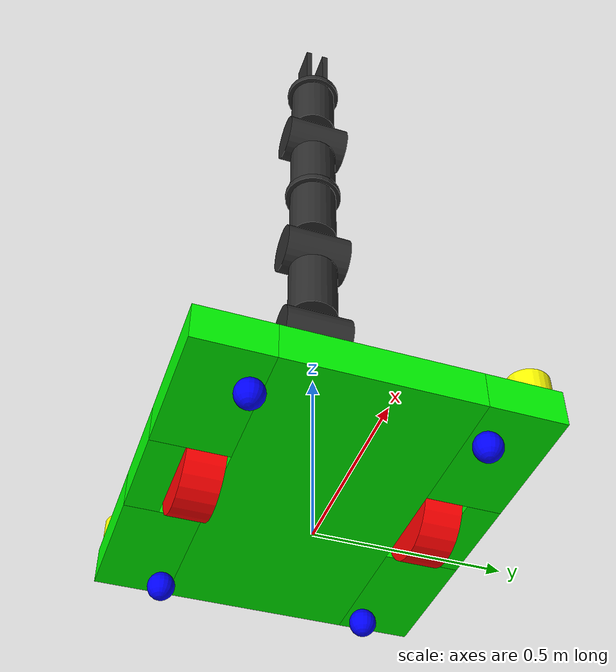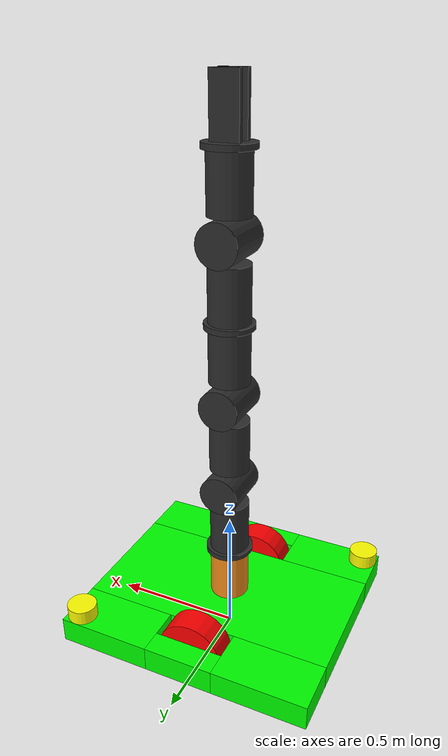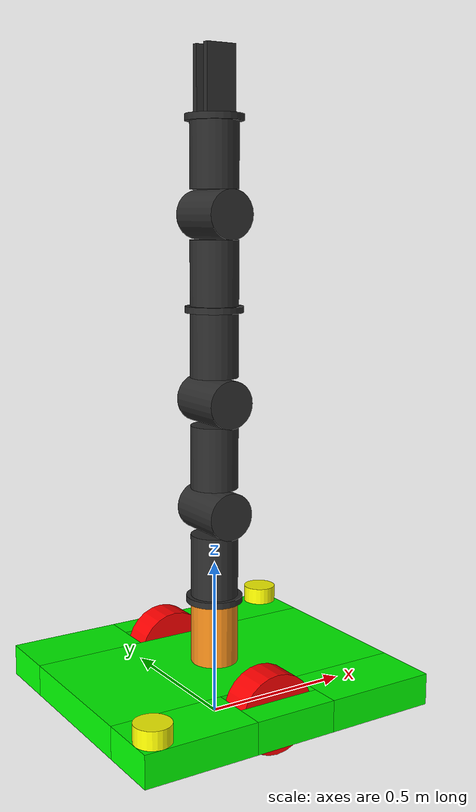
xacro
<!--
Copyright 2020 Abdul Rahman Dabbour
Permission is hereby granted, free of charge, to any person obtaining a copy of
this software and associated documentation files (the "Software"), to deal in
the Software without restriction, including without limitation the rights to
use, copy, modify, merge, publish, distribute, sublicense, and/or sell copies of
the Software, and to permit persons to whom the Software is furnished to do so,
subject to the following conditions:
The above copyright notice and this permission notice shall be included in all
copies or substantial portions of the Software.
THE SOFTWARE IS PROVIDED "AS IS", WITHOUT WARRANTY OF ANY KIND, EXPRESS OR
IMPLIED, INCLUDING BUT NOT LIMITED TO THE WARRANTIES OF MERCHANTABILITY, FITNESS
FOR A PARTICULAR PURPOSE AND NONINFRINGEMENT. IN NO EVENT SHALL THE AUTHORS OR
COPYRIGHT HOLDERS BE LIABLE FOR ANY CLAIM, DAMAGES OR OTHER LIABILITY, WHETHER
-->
<?xml version="1.0" ?>
<robot name="protobot" xmlns:xacro="https://www.ros.org/wiki/xacro">

  <!-- Xacro includes -->
  <xacro:include filename="$(find protobot)/urdf/materials.xacro" />
  <xacro:include filename="$(find protobot)/urdf/macros.xacro" />
  <xacro:include filename="$(find protobot)/urdf/gazebo.xacro" />

  <!-- Mobile base -->
  <!-- Chassis properties -->
  <xacro:property name="chassis_height" value="0.1" />
  <xacro:property name="chassis_length" value="1" />
  <xacro:property name="chassis_width" value="0.5" />
  <xacro:property name="chassis_mass" value="5" />

  <!-- Driven wheels properties -->
  <xacro:property name="dwheel_mass" value="0.5" />
  <xacro:property name="dwheel_width" value="0.1" />
  <xacro:property name="dwheel_radius" value="0.125" />

  <!-- Castor wheel properties -->
  <xacro:property name="cwheel_mass" value="0.5" />
  <xacro:property name="cwheel_radius" value="${((dwheel_radius-(chassis_height/2))/2)*0.99}" />

  <!-- Hokuyo properties -->
  <xacro:property name="laser_mass" value="1e-5" />
  <xacro:property name="laser_side" value="${((dwheel_radius-(chassis_height/2))/2)*1.5}" />
  <xacro:property name="laser_height" value="${laser_side*2}" />

  <xacro:include filename="$(find protobot)/urdf/mobile.xacro" />

  <!-- Mainpulator -->
  <xacro:arg name="manipulator" default="true" />
  <xacro:property name="manipulator" value="$(arg manipulator)" />
  <xacro:if value="${manipulator == 'true' or manipulator}">
    <!-- End effector properties -->
    <xacro:property name="endeffector_mass" value="0.1" />
    <xacro:property name="endeffector_width" value="0.02" />
    <xacro:property name="endeffector_length" value="0.1" />
    <xacro:property name="endeffector_height" value="0.2" />

    <!-- Axel offset properties -->
    <xacro:property name="axel_offset" value="0.005" />

    <!-- Gear 0 properties -->
    <xacro:property name="gear0_mass" value="0.5" />
    <xacro:property name="gear0_radius" value="0.075" />
    <xacro:property name="gear0_height" value="0.2" />

    <!-- Gear 2 properties -->
    <xacro:property name="gear2_mass" value="0.25" />
    <xacro:property name="gear2_radius" value="0.09" />
    <xacro:property name="gear2_height" value="0.02" />

    <!-- Link 1 properties -->
    <xacro:property name="alink1_mass" value="1" />
    <xacro:property name="alink1_radius" value="0.075" />
    <xacro:property name="alink1_height" value="0.2" />

    <!-- Link 2 properties -->
    <xacro:property name="alink2_mass" value="1" />
    <xacro:property name="alink2_radius" value="0.075" />
    <xacro:property name="alink2_height" value="0.2" />

    <!-- Link 3 properties -->
    <xacro:property name="alink3_mass" value="1" />
    <xacro:property name="alink3_radius" value="0.075" />
    <xacro:property name="alink3_height" value="0.2" />

    <!-- Link 4 properties -->
    <xacro:property name="alink4_mass" value="1" />
    <xacro:property name="alink4_radius" value="0.075" />
    <xacro:property name="alink4_height" value="0.2" />

    <!-- Link 5 properties -->
    <xacro:property name="alink5_mass" value="1" />
    <xacro:property name="alink5_radius" value="0.075" />
    <xacro:property name="alink5_height" value="0.2" />

    <!-- Link 6 properties -->
    <xacro:property name="alink6_mass" value="1" />
    <xacro:property name="alink6_radius" value="0.075" />
    <xacro:property name="alink6_height" value="0.2" />

    <xacro:include filename="$(find protobot)/urdf/manipulator.xacro" />
  </xacro:if>
</robot>

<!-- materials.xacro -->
<robot name="materials" xmlns:xacro="https://www.ros.org/wiki/xacro">

    <material name="red">
        <color rgba="1 0 0 1" />
    </material>
    <material name="green">
        <color rgba="0 1 0 1" />
    </material>
    <material name="blue">
        <color rgba="0 0 1 1" />
    </material>
    <material name="yellow">
        <color rgba="1 1 0 1" />
    </material>
    <material name="darkgrey">
        <color rgba="0.175 0.175 0.175 1" />
    </material>

</robot>

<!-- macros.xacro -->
<robot name="macros" xmlns:xacro="https://www.ros.org/wiki/xacro">

  <!-- Macros for calculating inertia matrices -->
  <xacro:macro name="cuboid_inertia" params="h w l m">
    <inertia ixx="${(m/12)*((w*w)+(h*h))}" iyy="${(m/12)*((h*h)+(l*l))}" izz="${(m/12)*((w*w)+(l*l))}" ixy="0" ixz="0" iyz="0" />
  </xacro:macro>

  <xacro:macro name="cylinder_inertia" params="r h m">
    <inertia ixx="${(m/12)*((3*r*r)+(h*h))}" iyy="${(m/12)*((3*r*r)+(h*h))}" izz="${(m/2)*(r*r)}" ixy="0" ixz="0" iyz="0" />
  </xacro:macro>

  <xacro:macro name="sphere_inertia" params="r m">
    <inertia ixx="${2*m*r*r/5}" ixy="0" ixz="0" iyy="${2*m*r*r/5}" iyz="0" izz="${2*m*r*r/5}" />
  </xacro:macro>

  <!-- Driven wheels macro -->
  <xacro:macro name="dwheel" params="prefix reflect">

    <link name="${prefix}_dwheel">
      <inertial>
        <mass value="${dwheel_mass}" />
        <xacro:cylinder_inertia r="${dwheel_radius}" h="${dwheel_width}" m="${dwheel_mass}" />
      </inertial>
      <visual>
        <origin xyz="0 0 0" rpy="${pi/2} 0 0" />
        <geometry>
          <cylinder radius="${dwheel_radius}" length="${dwheel_width}" />
        </geometry>
        <material name="red" />
      </visual>
      <collision>
        <origin xyz="0 0 0" rpy="${pi/2} 0 0" />
        <geometry>
          <cylinder radius="${dwheel_radius}" length="${dwheel_width}" />
        </geometry>
      </collision>
    </link>

    <joint name="${prefix}_dwheel_joint" type="continuous">
      <axis xyz="0 1 0" rpy="0 0 0" />
      <parent link="chassis" />
      <child link="${prefix}_dwheel" />
      <origin xyz="0 ${reflect*((chassis_width/2)+((dwheel_width/2) + 0.005))} 0" rpy="0 0 0" />
    </joint>

    <link name="${prefix}_dwheel_bumper1">
      <inertial>
        <mass value="${dwheel_mass}" />
        <xacro:cuboid_inertia l="${((chassis_length - (dwheel_radius*2))/2)*0.9}" w="${dwheel_width*2}" h="${chassis_height}" m="${laser_mass}" />
      </inertial>
      <visual>
        <origin xyz="0 0 0" rpy="0 0 0" />
        <geometry>
          <box size="${((chassis_length - ((dwheel_radius + 0.01)*2))/2)} ${dwheel_width*2} ${chassis_height}" />
        </geometry>
        <material name="green" />
      </visual>
      <collision>
        <origin xyz="0 0 0" rpy="0 0 0" />
        <geometry>
          <box size="${((chassis_length - ((dwheel_radius + 0.01)*2))/2)} ${dwheel_width*2} ${chassis_height}" />
        </geometry>
      </collision>
    </link>

    <joint name="chassis_to_${prefix}_dwheel_bumper1" type="fixed">
      <parent link="chassis" />
      <child link="${prefix}_dwheel_bumper1" />
      <origin xyz="${reflect*(((dwheel_radius + 0.01)) + ((((chassis_length - ((dwheel_radius + 0.01)*2))/2))/2))} ${reflect*((chassis_width/2)+((dwheel_width*2)/2))} 0" rpy="0 0 0" />
    </joint>

    <link name="${prefix}_dwheel_bumper2">
      <inertial>
        <mass value="${dwheel_mass}" />
        <xacro:cuboid_inertia l="${((chassis_length - ((dwheel_radius + 0.01)*2))/2)}" w="${dwheel_width*2}" h="${chassis_height}" m="${laser_mass}" />
      </inertial>
      <visual>
        <origin xyz="0 0 0" rpy="0 0 0" />
        <geometry>
          <box size="${((chassis_length - ((dwheel_radius + 0.01)*2))/2)} ${dwheel_width*2} ${chassis_height}" />
        </geometry>
        <material name="green" />
      </visual>
      <collision>
        <origin xyz="0 0 0" rpy="0 0 0" />
        <geometry>
          <box size="${((chassis_length - ((dwheel_radius + 0.01)*2))/2)} ${dwheel_width*2} ${chassis_height}" />
        </geometry>
      </collision>
    </link>

    <joint name="chassis_to_${prefix}_dwheel_bumper2" type="fixed">
      <parent link="chassis" />
      <child link="${prefix}_dwheel_bumper2" />
      <origin xyz="${-reflect*(((dwheel_radius + 0.01)) + ((((chassis_length - ((dwheel_radius + 0.01)*2))/2))/2))} ${reflect*((chassis_width/2)+((dwheel_width*2)/2))} 0" rpy="0 0 0" />
    </joint>

    <link name="${prefix}_dwheel_bumper3">
      <inertial>
        <mass value="${dwheel_mass}" />
        <xacro:cuboid_inertia l="${((chassis_length - ((dwheel_radius + 0.01)*2))/2)}" w="${dwheel_width*2}" h="${chassis_height}" m="${laser_mass}" />
      </inertial>
      <visual>
        <origin xyz="0 0 0" rpy="0 0 0" />
        <geometry>
          <box size="${(dwheel_radius + 0.01)*2} ${dwheel_width - 0.01} ${chassis_height}" />
        </geometry>
        <material name="green" />
      </visual>
      <collision>
        <origin xyz="0 0 0" rpy="0 0 0" />
        <geometry>
          <box size="${(dwheel_radius + 0.01)*2} ${dwheel_width - 0.01} ${chassis_height}" />
        </geometry>
      </collision>
    </link>

    <joint name="chassis_to_${prefix}_dwheel_bumper3" type="fixed">
      <parent link="chassis" />
      <child link="${prefix}_dwheel_bumper3" />
      <origin xyz="0 ${reflect*((chassis_width/2)+((dwheel_width*3)/2) + 0.005)} 0" rpy="0 0 0" />
    </joint>
  </xacro:macro>

  <!-- Castor wheels macro -->
  <xacro:macro name="cwheel" params="prefix x_reflect y_reflect">

    <link name="${prefix}_cwheel">
      <inertial>
        <mass value="${cwheel_mass}" />
        <xacro:sphere_inertia r="${cwheel_radius}" m="${cwheel_mass}" />
      </inertial>
      <visual>
        <origin xyz="0 0 0" rpy="0 0 0" />
        <geometry>
          <sphere radius="${cwheel_radius}" />
        </geometry>
        <material name="blue" />
      </visual>
      <collision>
        <origin xyz="0 0 0" rpy="0 0 0" />
        <geometry>
          <sphere radius="${cwheel_radius}" />
        </geometry>
      </collision>
    </link>

    <joint name="chassis_to_${prefix}_cwheel_joint" type="fixed">
      <parent link="chassis" />
      <child link="${prefix}_cwheel" />
      <origin xyz="${x_reflect*((chassis_length/2.25)-cwheel_radius)} ${y_reflect*((chassis_width/2.25)-cwheel_radius+dwheel_width)} ${-((chassis_height/2)+cwheel_radius)}" rpy="0 0 0" />
    </joint>

  </xacro:macro>

  <!-- Laser -->
  <xacro:macro name="laser" params="prefix x_reflect y_reflect">

    <link name="${prefix}_laser">
      <inertial>
        <mass value="${laser_mass}" />
        <origin xyz="0 0 0" rpy="0 0 0" />
        <xacro:cuboid_inertia l="${laser_side}" w="${laser_side}" h="${laser_side}" m="${laser_mass}" />
      </inertial>
      <visual>
        <origin xyz="0 0 0" rpy="0 0 0" />
        <geometry>
          <cylinder radius="${laser_side}" length="${laser_side}" />
        </geometry>
        <material name="yellow" />
      </visual>
      <collision>
        <origin xyz="0 0 0" rpy="0 0 0" />
        <geometry>
          <cylinder radius="${laser_side}" length="${laser_side}" />
        </geometry>
      </collision>
    </link>

    <joint name="chassis_to_${prefix}_laser_joint" type="fixed">
      <parent link="chassis" />
      <child link="${prefix}_laser" />
      <xacro:if value="${x_reflect==1}">
        <xacro:property name="yaw" value="${pi/4}" />
      </xacro:if>
      <xacro:if value="${x_reflect==-1}">
        <xacro:property name="yaw" value="${pi*5/4}" />
      </xacro:if>
      <origin xyz="${x_reflect*((chassis_length/2)-laser_side)} ${y_reflect*(((chassis_width/2)-laser_side)+(dwheel_width*2))} ${((chassis_height/2)+(laser_side/2))}" rpy="${pi} 0 ${yaw}" />
    </joint>

  </xacro:macro>

  <!-- Middle links -->
  <xacro:macro name="alink" params="index height prev_height radius mass axis prev_axis">
    <xacro:if value="${axis==0}">
      <xacro:property name="gear_mass" value="${gear0_mass}" />
      <xacro:property name="gear_radius" value="${gear0_radius}" />
      <xacro:property name="gear_height" value="${gear0_height}" />
    </xacro:if>
    <xacro:if value="${axis==2}">
      <xacro:property name="gear_mass" value="${gear2_mass}" />
      <xacro:property name="gear_radius" value="${gear2_radius}" />
      <xacro:property name="gear_height" value="${gear2_height}" />
    </xacro:if>

    <link name="alink${index}_gear">
      <collision>
        <origin xyz="0 0 0" rpy="0 0 0" />
        <geometry>
          <cylinder radius="${gear_radius}" length="${gear_height}" />
        </geometry>
      </collision>
      <visual>
        <origin xyz="0 0 0" rpy="0 0 0" />
        <geometry>
          <cylinder radius="${gear_radius}" length="${gear_height}" />
        </geometry>
        <material name="darkgrey" />
      </visual>
      <inertial>
        <origin xyz="0 0 0" rpy="0 0 0" />
        <mass value="${gear_mass}" />
        <xacro:cylinder_inertia r="${gear_radius}" h="${gear_height}" m="${gear_mass}" />
      </inertial>
    </link>
    <joint name="alink${index-1}_to_alink${index}_gear_joint" type="revolute">
      <axis xyz="0 0 1" rpy="0 0 0" />
      <limit effort="30" velocity="1.0" lower="-2" upper="2" />
      <xacro:if value="${axis==0}">
        <xacro:if value="${prev_axis==0}">
          <origin xyz="0 0 ${-((gear_radius) + (prev_height / 2))}" rpy="${-(pi/2)} 0 0" />
        </xacro:if>
        <xacro:if value="${prev_axis==2}">
          <origin xyz="0 0 ${(gear_radius) + (prev_height / 2)}" rpy="${pi/2} 0 0" />
        </xacro:if>
      </xacro:if>
      <xacro:if value="${axis==2}">
        <xacro:if value="${prev_axis==0}">
          <origin xyz="0 0 ${-((gear_height / 2) + (prev_height / 2))}" rpy="${pi} 0 0" />
        </xacro:if>
        <xacro:if value="${prev_axis==2}">
          <origin xyz="0 0 ${(gear_height / 2) + (prev_height / 2)}" rpy="0 0 0" />
        </xacro:if>
      </xacro:if>
      <parent link="alink${index-1}" />
      <child link="alink${index}_gear" />
    </joint>
    <transmission name="alink${index-1}_to_alink${index}_gear_transmission">
      <type>transmission_interface/SimpleTransmission</type>
      <joint name="alink${index-1}_to_alink${index}_gear_joint">
        <hardwareInterface>hardware_interface/EffortJointInterface</hardwareInterface>
      </joint>
      <actuator name="alink${index-1}_to_alink${index}_actuator">
        <hardwareInterface>hardware_interface/EffortJointInterface</hardwareInterface>
      </actuator>
    </transmission>

    <link name="alink${index}">
      <collision>
        <origin xyz="0 0 0" rpy="0 0 0" />
        <geometry>
          <cylinder radius="${radius}" length="${height}" />
        </geometry>
      </collision>
      <visual>
        <origin xyz="0 0 0" rpy="0 0 0" />
        <geometry>
          <cylinder radius="${radius}" length="${height}" />
        </geometry>
        <material name="darkgrey" />
      </visual>
      <inertial>
        <origin xyz="0 0 0" rpy="0 0 0" />
        <mass value="${mass}" />
        <xacro:cylinder_inertia r="${radius}" h="${height}" m="${mass}" />
      </inertial>
    </link>
    <joint name="alink${index}_gear_to_alink${index}" type="fixed">
      <xacro:if value="${axis==0}">
        <origin xyz="0 ${(gear_radius) + (height / 2)} 0" rpy="${pi/2} 0 0" />
      </xacro:if>
      <xacro:if value="${axis==2}">
        <origin xyz="0 0 ${(gear_height / 2) + (prev_height / 2)}" rpy="0 0 0" />
      </xacro:if>
      <parent link="alink${index}_gear" />
      <child link="alink${index}" />
    </joint>
  </xacro:macro>

</robot>

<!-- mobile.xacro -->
<robot name="mobile" xmlns:xacro="https://www.ros.org/wiki/xacro">

  <!-- Fixed odom definition -->
  <link name="odom" />

  <!-- Chassis definition -->
  <link name="chassis">
    <inertial>
      <mass value="${chassis_mass}" />
      <xacro:cuboid_inertia h="${chassis_height}" w="${chassis_width}" l="${chassis_length}" m="${chassis_mass}" />
    </inertial>
    <visual>
      <origin xyz="0 0 0" rpy="0 0 0" />
      <geometry>
        <box size="${chassis_length} ${chassis_width} ${chassis_height}" />
      </geometry>
      <material name="green" />
    </visual>
    <collision>
      <origin xyz="0 0 0" rpy="0 0 0" />
      <geometry>
        <box size="${chassis_length} ${chassis_width} ${chassis_height}" />
      </geometry>
    </collision>
  </link>

  <joint name="base_chassis_joint" type="fixed">
    <origin xyz="0 0 ${dwheel_radius}" rpy="0 0 0" />
    <parent link="odom" />
    <child link="chassis" />
  </joint>
  I
  <!-- Left driven wheel definition -->
  <xacro:dwheel prefix="left" reflect="1" />

  <!-- Right driven wheel definition -->
  <xacro:dwheel prefix="right" reflect="-1" />

  <!-- Caster wheel definitions -->
  <xacro:cwheel prefix="topleft" x_reflect="1" y_reflect="1" />
  <xacro:cwheel prefix="bottomleft" x_reflect="1" y_reflect="-1" />
  <xacro:cwheel prefix="topright" x_reflect="-1" y_reflect="1" />
  <xacro:cwheel prefix="bottomright" x_reflect="-1" y_reflect="-1" />

  <!-- Hokuyo Lasers -->
  <xacro:laser prefix="topleft" x_reflect="1" y_reflect="1" />
  <xacro:laser prefix="bottomright" x_reflect="-1" y_reflect="-1" />

</robot>

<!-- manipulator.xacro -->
<robot name="manipulator" xmlns:xacro="http://www.ros.org/wiki/xacro">

  <!-- Link 1 (Base link) -->
  <link name="alink1">
    <collision>
      <origin xyz="0 0 0" rpy="0 0 0" />
      <geometry>
        <cylinder radius="${alink1_radius}" length="${alink1_height}" />
      </geometry>
    </collision>
    <visual>
      <origin xyz="0 0 0" rpy="0 0 0" />
      <geometry>
        <cylinder radius="${alink1_radius}" length="${alink1_height}" />
      </geometry>
      <material name="orange" />
    </visual>
    <inertial>
      <origin xyz="0 0 0" rpy="0 0 0" />
      <mass value="${alink1_mass}" />
      <xacro:cylinder_inertia r="${alink1_radius}" h="${alink1_height}" m="${alink1_mass}" />
    </inertial>
  </link>
  <joint name="chassis_to_alink1" type="fixed">
    <origin xyz="0 0 ${(alink1_height / 2) + (chassis_height / 2)}" rpy="0 0 0" />
    <parent link="chassis" />
    <child link="alink1" />
  </joint>

  <!-- Links 2-6 -->
  <xacro:alink index="2" radius="${alink2_radius}" height="${alink2_height}" prev_height="${alink1_height}" mass="${alink2_mass}" axis="2" prev_axis="2" />
  <xacro:alink index="3" radius="${alink3_radius}" height="${alink3_height}" prev_height="${alink2_height}" mass="${alink3_mass}" axis="0" prev_axis="2" />
  <xacro:alink index="4" radius="${alink4_radius}" height="${alink4_height}" prev_height="${alink3_height}" mass="${alink4_mass}" axis="0" prev_axis="0" />
  <xacro:alink index="5" radius="${alink5_radius}" height="${alink5_height}" prev_height="${alink4_height}" mass="${alink5_mass}" axis="2" prev_axis="0" />
  <xacro:alink index="6" radius="${alink6_radius}" height="${alink6_height}" prev_height="${alink5_height}" mass="${alink6_mass}" axis="0" prev_axis="2" />

  <!-- End effector -->
  <link name="endeffector_gear">
    <collision>
      <origin xyz="0 0 0" rpy="0 0 0" />
      <geometry>
        <cylinder radius="${gear2_radius}" length="${gear2_height}" />
      </geometry>
    </collision>
    <visual>
      <origin xyz="0 0 0" rpy="0 0 0" />
      <geometry>
        <cylinder radius="${gear2_radius}" length="${gear2_height}" />
      </geometry>
      <material name="darkgrey" />
    </visual>
    <inertial>
      <origin xyz="0 0 0" rpy="0 0 0" />
      <mass value="${gear2_mass}" />
      <xacro:cylinder_inertia r="${gear2_radius}" h="${gear2_height}" m="${gear2_mass}" />
    </inertial>
  </link>
  <joint name="alink6_to_endeffector_gear_joint" type="revolute">
    <axis xyz="0 0 1" rpy="0 0 0" />
    <limit effort="30" velocity="1.0" lower="-2" upper="2" />
    <origin xyz="0 0 ${-((gear2_height / 2) + (alink6_height / 2))}" rpy="${pi} 0 0" />
    <parent link="alink6" />
    <child link="endeffector_gear" />
  </joint>
  <transmission name="alink6_to_endeffector_gear_transmission">
    <type>transmission_interface/SimpleTransmission</type>
    <joint name="alink6_to_endeffector_gear_joint">
      <hardwareInterface>hardware_interface/EffortJointInterface</hardwareInterface>
    </joint>
    <actuator name="alink6_to_endeffector_gear_actuator">
      <hardwareInterface>hardware_interface/EffortJointInterface</hardwareInterface>
    </actuator>
  </transmission>

  <link name="endeffector_left">
    <collision>
      <origin xyz="0 0 0" rpy="0 0 0" />
      <geometry>
        <box size="${endeffector_length} ${endeffector_width} ${endeffector_height}" />
      </geometry>
    </collision>
    <visual>
      <origin xyz="0 0 0" rpy="0 0 0" />
      <geometry>
        <box size="${endeffector_length} ${endeffector_width} ${endeffector_height}" />
      </geometry>
      <material name="darkgrey" />
    </visual>
    <inertial>
      <origin xyz="0 0 0" rpy="0 0 0" />
      <mass value="${endeffector_mass}" />
      <xacro:cuboid_inertia l="${endeffector_length}" w="${endeffector_width}" h="${endeffector_height}" m="${endeffector_mass}" />
    </inertial>
  </link>
  <joint name="endeffector_gear_to_endeffector_left_joint" type="prismatic">
    <axis xyz="0 1 0" rpy="0 0 0" />
    <limit effort="30" velocity="1.0" lower="${endeffector_width}" upper="${endeffector_width*2}" />
    <origin xyz="0 0 ${(gear2_height / 2) + (endeffector_height / 2)}" rpy="0 0 0" />
    <parent link="endeffector_gear" />
    <child link="endeffector_left" />
  </joint>
  <transmission name="endeffector_gear_to_endeffector_left_transmission">
    <type>transmission_interface/SimpleTransmission</type>
    <joint name="endeffector_gear_to_endeffector_left_joint">
      <hardwareInterface>hardware_interface/EffortJointInterface</hardwareInterface>
    </joint>
    <actuator name="endeffector_gear_to_endeffector_left_actuator">
      <hardwareInterface>hardware_interface/EffortJointInterface</hardwareInterface>
    </actuator>
  </transmission>

  <link name="endeffector_right">
    <collision>
      <origin xyz="0 0 0" rpy="0 0 0" />
      <geometry>
        <box size="${endeffector_length} ${endeffector_width} ${endeffector_height}" />
      </geometry>
    </collision>
    <visual>
      <origin xyz="0 0 0" rpy="0 0 0" />
      <geometry>
        <box size="${endeffector_length} ${endeffector_width} ${endeffector_height}" />
      </geometry>
      <material name="darkgrey" />
    </visual>
    <inertial>
      <origin xyz="0 0 0" rpy="0 0 0" />
      <mass value="${endeffector_mass}" />
      <xacro:cuboid_inertia l="${endeffector_length}" w="${endeffector_width}" h="${endeffector_height}" m="${endeffector_mass}" />
    </inertial>
  </link>
  <joint name="endeffector_gear_to_endeffector_right_joint" type="prismatic">
    <axis xyz="0 1 0" rpy="0 0 0" />
    <limit effort="30" velocity="1.0" lower="${-(endeffector_width*2)}" upper="${-endeffector_width}" />
    <origin xyz="0 0 ${(gear2_height / 2) + (endeffector_height / 2)}" rpy="0 0 0" />
    <parent link="endeffector_gear" />
    <child link="endeffector_right" />
  </joint>
  <transmission name="endeffector_gear_to_endeffector_right_transmission">
    <type>transmission_interface/SimpleTransmission</type>
    <joint name="endeffector_gear_to_endeffector_right_joint">
      <hardwareInterface>hardware_interface/EffortJointInterface</hardwareInterface>
    </joint>
    <actuator name="endeffector_gear_to_endeffector_right_actuator">
      <hardwareInterface>hardware_interface/EffortJointInterface</hardwareInterface>
    </actuator>
  </transmission>
</robot>
